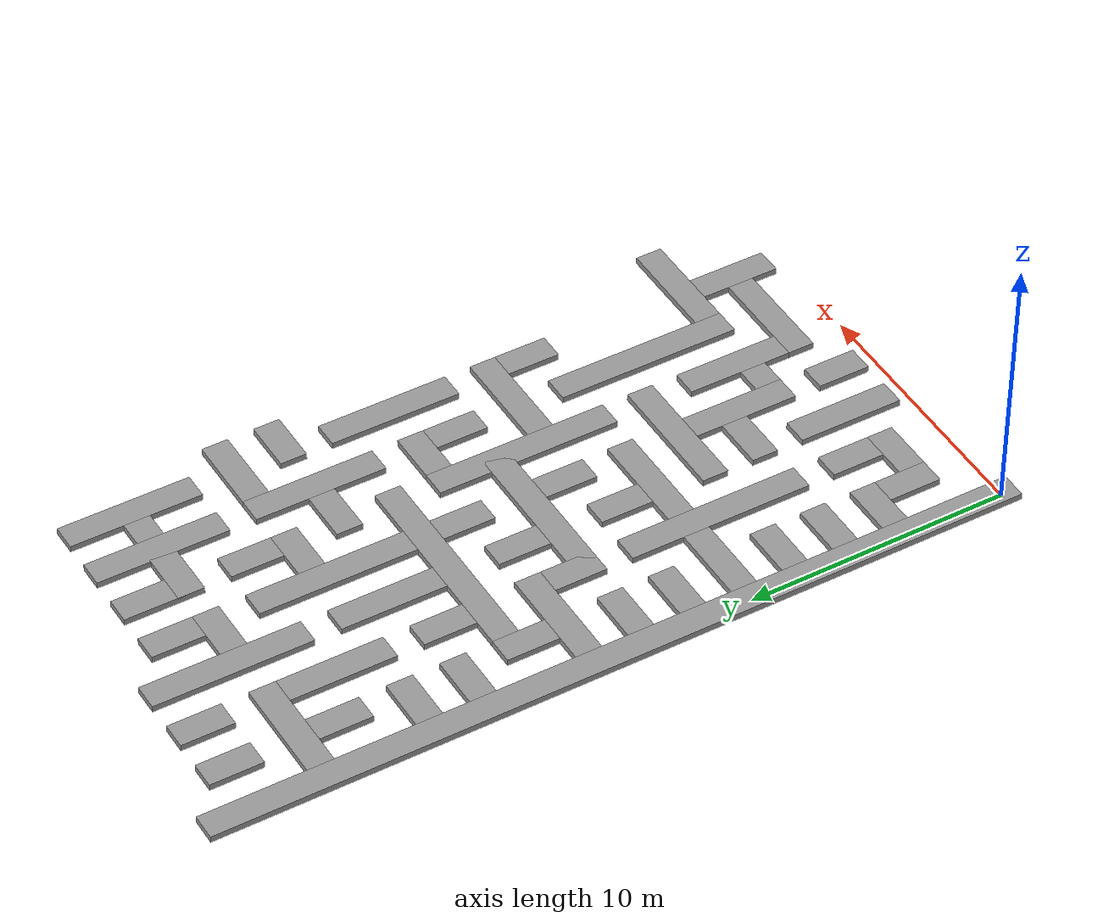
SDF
<sdf version="1.7">
 <model name="medium_maze">
  <pose>15 15 0 0 -0 0</pose>
  <link name="Wall_0">
   <collision name="Wall_0_Collision">
    <geometry><box><size>31 1 0.25</size></box></geometry>
    <pose>0 0 0.125 0 -0 0</pose>
   </collision>
   <visual name="Wall_0_Visual">
    <pose>0 0 0.125 0 -0 0</pose>
    <geometry><box><size>31 1 0.25</size></box></geometry>
    <material>
     <script><uri>file://media/materials/scripts/gazebo.material</uri><name>Gazebo/Grey</name></script>
     <ambient>1 1 1 1</ambient>
    </material>
    <meta><layer>0</layer></meta>
   </visual>
   <pose>-15 0 0 0 -0 1.5708</pose>
  </link>
  <link name="Wall_10">
   <collision name="Wall_10_Collision">
    <geometry><box><size>2 1 0.25</size></box></geometry>
    <pose>0 0 0.125 0 -0 0</pose>
   </collision>
   <visual name="Wall_10_Visual">
    <pose>0 0 0.125 0 -0 0</pose>
    <geometry><box><size>2 1 0.25</size></box></geometry>
    <material>
     <script><uri>file://media/materials/scripts/gazebo.material</uri><name>Gazebo/Grey</name></script>
     <ambient>1 1 1 1</ambient>
    </material>
    <meta><layer>0</layer></meta>
   </visual>
   <pose>-11 13.5 0 0 -0 -1.5708</pose>
  </link>
  <link name="Wall_102">
   <collision name="Wall_102_Collision">
    <geometry><box><size>4 1 0.25</size></box></geometry>
    <pose>0 0 0.125 0 -0 0</pose>
   </collision>
   <visual name="Wall_102_Visual">
    <pose>0 0 0.125 0 -0 0</pose>
    <geometry><box><size>4 1 0.25</size></box></geometry>
    <material>
     <script><uri>file://media/materials/scripts/gazebo.material</uri><name>Gazebo/Grey</name></script>
     <ambient>1 1 1 1</ambient>
    </material>
    <meta><layer>0</layer></meta>
   </visual>
   <pose>-3.5 -13 0 0 -0 0</pose>
  </link>
  <link name="Wall_104">
   <collision name="Wall_104_Collision">
    <geometry><box><size>4 1 0.25</size></box></geometry>
    <pose>0 0 0.125 0 -0 0</pose>
   </collision>
   <visual name="Wall_104_Visual">
    <pose>0 0 0.125 0 -0 0</pose>
    <geometry><box><size>4 1 0.25</size></box></geometry>
    <material>
     <script><uri>file://media/materials/scripts/gazebo.material</uri><name>Gazebo/Grey</name></script>
     <ambient>1 1 1 1</ambient>
    </material>
    <meta><layer>0</layer></meta>
   </visual>
   <pose>-5 -10.5 0 0 -0 -1.5708</pose>
  </link>
  <link name="Wall_106">
   <collision name="Wall_106_Collision">
    <geometry><box><size>2 1 0.25</size></box></geometry>
    <pose>0 0 0.125 0 -0 0</pose>
   </collision>
   <visual name="Wall_106_Visual">
    <pose>0 0 0.125 0 -0 0</pose>
    <geometry><box><size>2 1 0.25</size></box></geometry>
    <material>
     <script><uri>file://media/materials/scripts/gazebo.material</uri><name>Gazebo/Grey</name></script>
     <ambient>1 1 1 1</ambient>
    </material>
    <meta><layer>0</layer></meta>
   </visual>
   <pose>-8.5 -9 0 0 -0 0</pose>
  </link>
  <link name="Wall_108">
   <collision name="Wall_108_Collision">
    <geometry><box><size>7 1 0.25</size></box></geometry>
    <pose>0 0 0.125 0 -0 0</pose>
   </collision>
   <visual name="Wall_108_Visual">
    <pose>0 0 0.125 0 -0 0</pose>
    <geometry><box><size>7 1 0.25</size></box></geometry>
    <material>
     <script><uri>file://media/materials/scripts/gazebo.material</uri><name>Gazebo/Grey</name></script>
     <ambient>1 1 1 1</ambient>
    </material>
    <meta><layer>0</layer></meta>
   </visual>
   <pose>-3 -8 0 0 -0 1.5708</pose>
  </link>
  <link name="Wall_12">
   <collision name="Wall_12_Collision">
    <geometry><box><size>6 1 0.25</size></box></geometry>
    <pose>0 0 0.125 0 -0 0</pose>
   </collision>
   <visual name="Wall_12_Visual">
    <pose>0 0 0.125 0 -0 0</pose>
    <geometry><box><size>6 1 0.25</size></box></geometry>
    <material>
     <script><uri>file://media/materials/scripts/gazebo.material</uri><name>Gazebo/Grey</name></script>
     <ambient>1 1 1 1</ambient>
    </material>
    <meta><layer>0</layer></meta>
   </visual>
   <pose>-9 11.5 0 0 -0 -1.5708</pose>
  </link>
  <link name="Wall_14">
   <collision name="Wall_14_Collision">
    <geometry><box><size>2 1 0.25</size></box></geometry>
    <pose>0 0 0.125 0 -0 0</pose>
   </collision>
   <visual name="Wall_14_Visual">
    <pose>0 0 0.125 0 -0 0</pose>
    <geometry><box><size>2 1 0.25</size></box></geometry>
    <material>
     <script><uri>file://media/materials/scripts/gazebo.material</uri><name>Gazebo/Grey</name></script>
     <ambient>1 1 1 1</ambient>
    </material>
    <meta><layer>0</layer></meta>
   </visual>
   <pose>-7.5 11 0 0 -0 0</pose>
  </link>
  <link name="Wall_16">
   <collision name="Wall_16_Collision">
    <geometry><box><size>2 1 0.25</size></box></geometry>
    <pose>0 0 0.125 0 -0 0</pose>
   </collision>
   <visual name="Wall_16_Visual">
    <pose>0 0 0.125 0 -0 0</pose>
    <geometry><box><size>2 1 0.25</size></box></geometry>
    <material>
     <script><uri>file://media/materials/scripts/gazebo.material</uri><name>Gazebo/Grey</name></script>
     <ambient>1 1 1 1</ambient>
    </material>
    <meta><layer>0</layer></meta>
   </visual>
   <pose>-7 12.5 0 0 -0 1.5708</pose>
  </link>
  <link name="Wall_18">
   <collision name="Wall_18_Collision">
    <geometry><box><size>4 1 0.25</size></box></geometry>
    <pose>0 0 0.125 0 -0 0</pose>
   </collision>
   <visual name="Wall_18_Visual">
    <pose>0 0 0.125 0 -0 0</pose>
    <geometry><box><size>4 1 0.25</size></box></geometry>
    <material>
     <script><uri>file://media/materials/scripts/gazebo.material</uri><name>Gazebo/Grey</name></script>
     <ambient>1 1 1 1</ambient>
    </material>
    <meta><layer>0</layer></meta>
   </visual>
   <pose>-12.5 11 0 0 -0 0</pose>
  </link>
  <link name="Wall_198">
   <collision name="Wall_198_Collision">
    <geometry><box><size>5 1 0.25</size></box></geometry>
    <pose>0 0 0.125 0 -0 0</pose>
   </collision>
   <visual name="Wall_198_Visual">
    <pose>0 0 0.125 0 -0 0</pose>
    <geometry><box><size>5 1 0.25</size></box></geometry>
    <material>
     <script><uri>file://media/materials/scripts/gazebo.material</uri><name>Gazebo/Grey</name></script>
     <ambient>1 1 1 1</ambient>
    </material>
    <meta><layer>0</layer></meta>
   </visual>
   <pose>-1 11 0 0 -0 -1.5708</pose>
  </link>
  <link name="Wall_20">
   <collision name="Wall_20_Collision">
    <geometry><box><size>2 1 0.25</size></box></geometry>
    <pose>0 0 0.125 0 -0 0</pose>
   </collision>
   <visual name="Wall_20_Visual">
    <pose>0 0 0.125 0 -0 0</pose>
    <geometry><box><size>2 1 0.25</size></box></geometry>
    <material>
     <script><uri>file://media/materials/scripts/gazebo.material</uri><name>Gazebo/Grey</name></script>
     <ambient>1 1 1 1</ambient>
    </material>
    <meta><layer>0</layer></meta>
   </visual>
   <pose>-13 9.5 0 0 -0 -1.5708</pose>
  </link>
  <link name="Wall_22">
   <collision name="Wall_22_Collision">
    <geometry><box><size>4 1 0.25</size></box></geometry>
    <pose>0 0 0.125 0 -0 0</pose>
   </collision>
   <visual name="Wall_22_Visual">
    <pose>0 0 0.125 0 -0 0</pose>
    <geometry><box><size>4 1 0.25</size></box></geometry>
    <material>
     <script><uri>file://media/materials/scripts/gazebo.material</uri><name>Gazebo/Grey</name></script>
     <ambient>1 1 1 1</ambient>
    </material>
    <meta><layer>0</layer></meta>
   </visual>
   <pose>-11 8.5 0 0 -0 -1.5708</pose>
  </link>
  <link name="Wall_220">
   <collision name="Wall_220_Collision">
    <geometry><box><size>3 1 0.25</size></box></geometry>
    <pose>0 0 0.125 0 -0 0</pose>
   </collision>
   <visual name="Wall_220_Visual">
    <pose>0 0 0.125 0 -0 0</pose>
    <geometry><box><size>3 1 0.25</size></box></geometry>
    <material>
     <script><uri>file://media/materials/scripts/gazebo.material</uri><name>Gazebo/Grey</name></script>
     <ambient>1 1 1 1</ambient>
    </material>
    <meta><layer>0</layer></meta>
   </visual>
   <pose>-5 12 0 0 -0 -1.5708</pose>
  </link>
  <link name="Wall_224">
   <collision name="Wall_224_Collision">
    <geometry><box><size>5 1 0.25</size></box></geometry>
    <pose>0 0 0.125 0 -0 0</pose>
   </collision>
   <visual name="Wall_224_Visual">
    <pose>0 0 0.125 0 -0 0</pose>
    <geometry><box><size>5 1 0.25</size></box></geometry>
    <material>
     <script><uri>file://media/materials/scripts/gazebo.material</uri><name>Gazebo/Grey</name></script>
     <ambient>1 1 1 1</ambient>
    </material>
    <meta><layer>0</layer></meta>
   </visual>
   <pose>-3 11 0 0 -0 0</pose>
  </link>
  <link name="Wall_226">
   <collision name="Wall_226_Collision">
    <geometry><box><size>2 1 0.25</size></box></geometry>
    <pose>0 0 0.125 0 -0 0</pose>
   </collision>
   <visual name="Wall_226_Visual">
    <pose>0 0 0.125 0 -0 0</pose>
    <geometry><box><size>2 1 0.25</size></box></geometry>
    <material>
     <script><uri>file://media/materials/scripts/gazebo.material</uri><name>Gazebo/Grey</name></script>
     <ambient>1 1 1 1</ambient>
    </material>
    <meta><layer>0</layer></meta>
   </visual>
   <pose>-4.5 5 0 0 -0 0</pose>
  </link>
  <link name="Wall_228">
   <collision name="Wall_228_Collision">
    <geometry><box><size>5 1 0.25</size></box></geometry>
    <pose>0 0 0.125 0 -0 0</pose>
   </collision>
   <visual name="Wall_228_Visual">
    <pose>0 0 0.125 0 -0 0</pose>
    <geometry><box><size>5 1 0.25</size></box></geometry>
    <material>
     <script><uri>file://media/materials/scripts/gazebo.material</uri><name>Gazebo/Grey</name></script>
     <ambient>1 1 1 1</ambient>
    </material>
    <meta><layer>0</layer></meta>
   </visual>
   <pose>-3 11 0 0 -0 -1.5708</pose>
  </link>
  <link name="Wall_230">
   <collision name="Wall_230_Collision">
    <geometry><box><size>5 1 0.25</size></box></geometry>
    <pose>0 0 0.125 0 -0 0</pose>
   </collision>
   <visual name="Wall_230_Visual">
    <pose>0 0 0.125 0 -0 0</pose>
    <geometry><box><size>5 1 0.25</size></box></geometry>
    <material>
     <script><uri>file://media/materials/scripts/gazebo.material</uri><name>Gazebo/Grey</name></script>
     <ambient>1 1 1 1</ambient>
    </material>
    <meta><layer>0</layer></meta>
   </visual>
   <pose>-3 5 0 0 -0 1.5708</pose>
  </link>
  <link name="Wall_232">
   <collision name="Wall_232_Collision">
    <geometry><box><size>3 1 0.25</size></box></geometry>
    <pose>0 0 0.125 0 -0 0</pose>
   </collision>
   <visual name="Wall_232_Visual">
    <pose>0 0 0.125 0 -0 0</pose>
    <geometry><box><size>3 1 0.25</size></box></geometry>
    <material>
     <script><uri>file://media/materials/scripts/gazebo.material</uri><name>Gazebo/Grey</name></script>
     <ambient>1 1 1 1</ambient>
    </material>
    <meta><layer>0</layer></meta>
   </visual>
   <pose>-1 7 0 0 -0 0</pose>
  </link>
  <link name="Wall_234">
   <collision name="Wall_234_Collision">
    <geometry><box><size>2 1 0.25</size></box></geometry>
    <pose>0 0 0.125 0 -0 0</pose>
   </collision>
   <visual name="Wall_234_Visual">
    <pose>0 0 0.125 0 -0 0</pose>
    <geometry><box><size>2 1 0.25</size></box></geometry>
    <material>
     <script><uri>file://media/materials/scripts/gazebo.material</uri><name>Gazebo/Grey</name></script>
     <ambient>1 1 1 1</ambient>
    </material>
    <meta><layer>0</layer></meta>
   </visual>
   <pose>-0.5 5 0 0 -0 3.14159</pose>
  </link>
  <link name="Wall_236">
   <collision name="Wall_236_Collision">
    <geometry><box><size>5 1 0.25</size></box></geometry>
    <pose>0 0 0.125 0 -0 0</pose>
   </collision>
   <visual name="Wall_236_Visual">
    <pose>0 0 0.125 0 -0 0</pose>
    <geometry><box><size>5 1 0.25</size></box></geometry>
    <material>
     <script><uri>file://media/materials/scripts/gazebo.material</uri><name>Gazebo/Grey</name></script>
     <ambient>1 1 1 1</ambient>
    </material>
    <meta><layer>0</layer></meta>
   </visual>
   <pose>-1 1 0 0 -0 -1.5708</pose>
  </link>
  <link name="Wall_24">
   <collision name="Wall_24_Collision">
    <geometry><box><size>2 1 0.25</size></box></geometry>
    <pose>0 0 0.125 0 -0 0</pose>
   </collision>
   <visual name="Wall_24_Visual">
    <pose>0 0 0.125 0 -0 0</pose>
    <geometry><box><size>2 1 0.25</size></box></geometry>
    <material>
     <script><uri>file://media/materials/scripts/gazebo.material</uri><name>Gazebo/Grey</name></script>
     <ambient>1 1 1 1</ambient>
    </material>
    <meta><layer>0</layer></meta>
   </visual>
   <pose>-13.5 7 0 0 -0 0</pose>
  </link>
  <link name="Wall_26">
   <collision name="Wall_26_Collision">
    <geometry><box><size>2 1 0.25</size></box></geometry>
    <pose>0 0 0.125 0 -0 0</pose>
   </collision>
   <visual name="Wall_26_Visual">
    <pose>0 0 0.125 0 -0 0</pose>
    <geometry><box><size>2 1 0.25</size></box></geometry>
    <material>
     <script><uri>file://media/materials/scripts/gazebo.material</uri><name>Gazebo/Grey</name></script>
     <ambient>1 1 1 1</ambient>
    </material>
    <meta><layer>0</layer></meta>
   </visual>
   <pose>-13.5 5 0 0 -0 0</pose>
  </link>
  <link name="Wall_28">
   <collision name="Wall_28_Collision">
    <geometry><box><size>4 1 0.25</size></box></geometry>
    <pose>0 0 0.125 0 -0 0</pose>
   </collision>
   <visual name="Wall_28_Visual">
    <pose>0 0 0.125 0 -0 0</pose>
    <geometry><box><size>4 1 0.25</size></box></geometry>
    <material>
     <script><uri>file://media/materials/scripts/gazebo.material</uri><name>Gazebo/Grey</name></script>
     <ambient>1 1 1 1</ambient>
    </material>
    <meta><layer>0</layer></meta>
   </visual>
   <pose>-12.5 1 0 0 -0 0</pose>
  </link>
  <link name="Wall_30">
   <collision name="Wall_30_Collision">
    <geometry><box><size>2 1 0.25</size></box></geometry>
    <pose>0 0 0.125 0 -0 0</pose>
   </collision>
   <visual name="Wall_30_Visual">
    <pose>0 0 0.125 0 -0 0</pose>
    <geometry><box><size>2 1 0.25</size></box></geometry>
    <material>
     <script><uri>file://media/materials/scripts/gazebo.material</uri><name>Gazebo/Grey</name></script>
     <ambient>1 1 1 1</ambient>
    </material>
    <meta><layer>0</layer></meta>
   </visual>
   <pose>-11 4.5 0 0 -0 1.5708</pose>
  </link>
  <link name="Wall_32">
   <collision name="Wall_32_Collision">
    <geometry><box><size>2 1 0.25</size></box></geometry>
    <pose>0 0 0.125 0 -0 0</pose>
   </collision>
   <visual name="Wall_32_Visual">
    <pose>0 0 0.125 0 -0 0</pose>
    <geometry><box><size>2 1 0.25</size></box></geometry>
    <material>
     <script><uri>file://media/materials/scripts/gazebo.material</uri><name>Gazebo/Grey</name></script>
     <ambient>1 1 1 1</ambient>
    </material>
    <meta><layer>0</layer></meta>
   </visual>
   <pose>-13 2.5 0 0 -0 1.5708</pose>
  </link>
  <link name="Wall_34">
   <collision name="Wall_34_Collision">
    <geometry><box><size>4 1 0.25</size></box></geometry>
    <pose>0 0 0.125 0 -0 0</pose>
   </collision>
   <visual name="Wall_34_Visual">
    <pose>0 0 0.125 0 -0 0</pose>
    <geometry><box><size>4 1 0.25</size></box></geometry>
    <material>
     <script><uri>file://media/materials/scripts/gazebo.material</uri><name>Gazebo/Grey</name></script>
     <ambient>1 1 1 1</ambient>
    </material>
    <meta><layer>0</layer></meta>
   </visual>
   <pose>-9 5.5 0 0 -0 1.5708</pose>
  </link>
  <link name="Wall_36">
   <collision name="Wall_36_Collision">
    <geometry><box><size>8 1 0.25</size></box></geometry>
    <pose>0 0 0.125 0 -0 0</pose>
   </collision>
   <visual name="Wall_36_Visual">
    <pose>0 0 0.125 0 -0 0</pose>
    <geometry><box><size>8 1 0.25</size></box></geometry>
    <material>
     <script><uri>file://media/materials/scripts/gazebo.material</uri><name>Gazebo/Grey</name></script>
     <ambient>1 1 1 1</ambient>
    </material>
    <meta><layer>0</layer></meta>
   </visual>
   <pose>-8.5 3 0 0 -0 0</pose>
  </link>
  <link name="Wall_38">
   <collision name="Wall_38_Collision">
    <geometry><box><size>6 1 0.25</size></box></geometry>
    <pose>0 0 0.125 0 -0 0</pose>
   </collision>
   <visual name="Wall_38_Visual">
    <pose>0 0 0.125 0 -0 0</pose>
    <geometry><box><size>6 1 0.25</size></box></geometry>
    <material>
     <script><uri>file://media/materials/scripts/gazebo.material</uri><name>Gazebo/Grey</name></script>
     <ambient>1 1 1 1</ambient>
    </material>
    <meta><layer>0</layer></meta>
   </visual>
   <pose>-7 6.5 0 0 -0 1.5708</pose>
  </link>
  <link name="Wall_40">
   <collision name="Wall_40_Collision">
    <geometry><box><size>2 1 0.25</size></box></geometry>
    <pose>0 0 0.125 0 -0 0</pose>
   </collision>
   <visual name="Wall_40_Visual">
    <pose>0 0 0.125 0 -0 0</pose>
    <geometry><box><size>2 1 0.25</size></box></geometry>
    <material>
     <script><uri>file://media/materials/scripts/gazebo.material</uri><name>Gazebo/Grey</name></script>
     <ambient>1 1 1 1</ambient>
    </material>
    <meta><layer>0</layer></meta>
   </visual>
   <pose>-11 -0.5 0 0 -0 -1.5708</pose>
  </link>
  <link name="Wall_42">
   <collision name="Wall_42_Collision">
    <geometry><box><size>2 1 0.25</size></box></geometry>
    <pose>0 0 0.125 0 -0 0</pose>
   </collision>
   <visual name="Wall_42_Visual">
    <pose>0 0 0.125 0 -0 0</pose>
    <geometry><box><size>2 1 0.25</size></box></geometry>
    <material>
     <script><uri>file://media/materials/scripts/gazebo.material</uri><name>Gazebo/Grey</name></script>
     <ambient>1 1 1 1</ambient>
    </material>
    <meta><layer>0</layer></meta>
   </visual>
   <pose>-9 0.5 0 0 -0 -1.5708</pose>
  </link>
  <link name="Wall_44">
   <collision name="Wall_44_Collision">
    <geometry><box><size>2 1 0.25</size></box></geometry>
    <pose>0 0 0.125 0 -0 0</pose>
   </collision>
   <visual name="Wall_44_Visual">
    <pose>0 0 0.125 0 -0 0</pose>
    <geometry><box><size>2 1 0.25</size></box></geometry>
    <material>
     <script><uri>file://media/materials/scripts/gazebo.material</uri><name>Gazebo/Grey</name></script>
     <ambient>1 1 1 1</ambient>
    </material>
    <meta><layer>0</layer></meta>
   </visual>
   <pose>-7 1.5 0 0 -0 -1.5708</pose>
  </link>
  <link name="Wall_46">
   <collision name="Wall_46_Collision">
    <geometry><box><size>2 1 0.25</size></box></geometry>
    <pose>0 0 0.125 0 -0 0</pose>
   </collision>
   <visual name="Wall_46_Visual">
    <pose>0 0 0.125 0 -0 0</pose>
    <geometry><box><size>2 1 0.25</size></box></geometry>
    <material>
     <script><uri>file://media/materials/scripts/gazebo.material</uri><name>Gazebo/Grey</name></script>
     <ambient>1 1 1 1</ambient>
    </material>
    <meta><layer>0</layer></meta>
   </visual>
   <pose>-5 8.5 0 0 -0 1.5708</pose>
  </link>
  <link name="Wall_48">
   <collision name="Wall_48_Collision">
    <geometry><box><size>2 1 0.25</size></box></geometry>
    <pose>0 0 0.125 0 -0 0</pose>
   </collision>
   <visual name="Wall_48_Visual">
    <pose>0 0 0.125 0 -0 0</pose>
    <geometry><box><size>2 1 0.25</size></box></geometry>
    <material>
     <script><uri>file://media/materials/scripts/gazebo.material</uri><name>Gazebo/Grey</name></script>
     <ambient>1 1 1 1</ambient>
    </material>
    <meta><layer>0</layer></meta>
   </visual>
   <pose>-5.5 7 0 0 -0 0</pose>
  </link>
  <link name="Wall_50">
   <collision name="Wall_50_Collision">
    <geometry><box><size>7 1 0.25</size></box></geometry>
    <pose>0 0 0.125 0 -0 0</pose>
   </collision>
   <visual name="Wall_50_Visual">
    <pose>0 0 0.125 0 -0 0</pose>
    <geometry><box><size>7 1 0.25</size></box></geometry>
    <material>
     <script><uri>file://media/materials/scripts/gazebo.material</uri><name>Gazebo/Grey</name></script>
     <ambient>1 1 1 1</ambient>
    </material>
    <meta><layer>0</layer></meta>
   </visual>
   <pose>-8 -1 0 0 -0 0</pose>
  </link>
  <link name="Wall_52">
   <collision name="Wall_52_Collision">
    <geometry><box><size>2 1 0.25</size></box></geometry>
    <pose>0 0 0.125 0 -0 0</pose>
   </collision>
   <visual name="Wall_52_Visual">
    <pose>0 0 0.125 0 -0 0</pose>
    <geometry><box><size>2 1 0.25</size></box></geometry>
    <material>
     <script><uri>file://media/materials/scripts/gazebo.material</uri><name>Gazebo/Grey</name></script>
     <ambient>1 1 1 1</ambient>
    </material>
    <meta><layer>0</layer></meta>
   </visual>
   <pose>-13.5 -3 0 0 -0 0</pose>
  </link>
  <link name="Wall_54">
   <collision name="Wall_54_Collision">
    <geometry><box><size>2 1 0.25</size></box></geometry>
    <pose>0 0 0.125 0 -0 0</pose>
   </collision>
   <visual name="Wall_54_Visual">
    <pose>0 0 0.125 0 -0 0</pose>
    <geometry><box><size>2 1 0.25</size></box></geometry>
    <material>
     <script><uri>file://media/materials/scripts/gazebo.material</uri><name>Gazebo/Grey</name></script>
     <ambient>1 1 1 1</ambient>
    </material>
    <meta><layer>0</layer></meta>
   </visual>
   <pose>-7 -2.5 0 0 -0 -1.5708</pose>
  </link>
  <link name="Wall_56">
   <collision name="Wall_56_Collision">
    <geometry><box><size>2 1 0.25</size></box></geometry>
    <pose>0 0 0.125 0 -0 0</pose>
   </collision>
   <visual name="Wall_56_Visual">
    <pose>0 0 0.125 0 -0 0</pose>
    <geometry><box><size>2 1 0.25</size></box></geometry>
    <material>
     <script><uri>file://media/materials/scripts/gazebo.material</uri><name>Gazebo/Grey</name></script>
     <ambient>1 1 1 1</ambient>
    </material>
    <meta><layer>0</layer></meta>
   </visual>
   <pose>-3 -0.5 0 0 -0 -1.5708</pose>
  </link>
  <link name="Wall_58">
   <collision name="Wall_58_Collision">
    <geometry><box><size>2 1 0.25</size></box></geometry>
    <pose>0 0 0.125 0 -0 0</pose>
   </collision>
   <visual name="Wall_58_Visual">
    <pose>0 0 0.125 0 -0 0</pose>
    <geometry><box><size>2 1 0.25</size></box></geometry>
    <material>
     <script><uri>file://media/materials/scripts/gazebo.material</uri><name>Gazebo/Grey</name></script>
     <ambient>1 1 1 1</ambient>
    </material>
    <meta><layer>0</layer></meta>
   </visual>
   <pose>-1 -4.5 0 0 -0 -1.5708</pose>
  </link>
  <link name="Wall_60">
   <collision name="Wall_60_Collision">
    <geometry><box><size>2 1 0.25</size></box></geometry>
    <pose>0 0 0.125 0 -0 0</pose>
   </collision>
   <visual name="Wall_60_Visual">
    <pose>0 0 0.125 0 -0 0</pose>
    <geometry><box><size>2 1 0.25</size></box></geometry>
    <material>
     <script><uri>file://media/materials/scripts/gazebo.material</uri><name>Gazebo/Grey</name></script>
     <ambient>1 1 1 1</ambient>
    </material>
    <meta><layer>0</layer></meta>
   </visual>
   <pose>-13.5 -1 0 0 -0 0</pose>
  </link>
  <link name="Wall_62">
   <collision name="Wall_62_Collision">
    <geometry><box><size>2 1 0.25</size></box></geometry>
    <pose>0 0 0.125 0 -0 0</pose>
   </collision>
   <visual name="Wall_62_Visual">
    <pose>0 0 0.125 0 -0 0</pose>
    <geometry><box><size>2 1 0.25</size></box></geometry>
    <material>
     <script><uri>file://media/materials/scripts/gazebo.material</uri><name>Gazebo/Grey</name></script>
     <ambient>1 1 1 1</ambient>
    </material>
    <meta><layer>0</layer></meta>
   </visual>
   <pose>-3.5 1 0 0 -0 0</pose>
  </link>
  <link name="Wall_64">
   <collision name="Wall_64_Collision">
    <geometry><box><size>4 1 0.25</size></box></geometry>
    <pose>0 0 0.125 0 -0 0</pose>
   </collision>
   <visual name="Wall_64_Visual">
    <pose>0 0 0.125 0 -0 0</pose>
    <geometry><box><size>4 1 0.25</size></box></geometry>
    <material>
     <script><uri>file://media/materials/scripts/gazebo.material</uri><name>Gazebo/Grey</name></script>
     <ambient>1 1 1 1</ambient>
    </material>
    <meta><layer>0</layer></meta>
   </visual>
   <pose>-2.5 -3 0 0 -0 0</pose>
  </link>
  <link name="Wall_66">
   <collision name="Wall_66_Collision">
    <geometry><box><size>7 1 0.25</size></box></geometry>
    <pose>0 0 0.125 0 -0 0</pose>
   </collision>
   <visual name="Wall_66_Visual">
    <pose>0 0 0.125 0 -0 0</pose>
    <geometry><box><size>7 1 0.25</size></box></geometry>
    <material>
     <script><uri>file://media/materials/scripts/gazebo.material</uri><name>Gazebo/Grey</name></script>
     <ambient>1 1 1 1</ambient>
    </material>
    <meta><layer>0</layer></meta>
   </visual>
   <pose>-5 -2 0 0 -0 -1.5708</pose>
  </link>
  <link name="Wall_68">
   <collision name="Wall_68_Collision">
    <geometry><box><size>7 1 0.25</size></box></geometry>
    <pose>0 0 0.125 0 -0 0</pose>
   </collision>
   <visual name="Wall_68_Visual">
    <pose>0 0 0.125 0 -0 0</pose>
    <geometry><box><size>7 1 0.25</size></box></geometry>
    <material>
     <script><uri>file://media/materials/scripts/gazebo.material</uri><name>Gazebo/Grey</name></script>
     <ambient>1 1 1 1</ambient>
    </material>
    <meta><layer>0</layer></meta>
   </visual>
   <pose>-11 -6 0 0 -0 1.5708</pose>
  </link>
  <link name="Wall_70">
   <collision name="Wall_70_Collision">
    <geometry><box><size>2 1 0.25</size></box></geometry>
    <pose>0 0 0.125 0 -0 0</pose>
   </collision>
   <visual name="Wall_70_Visual">
    <pose>0 0 0.125 0 -0 0</pose>
    <geometry><box><size>2 1 0.25</size></box></geometry>
    <material>
     <script><uri>file://media/materials/scripts/gazebo.material</uri><name>Gazebo/Grey</name></script>
     <ambient>1 1 1 1</ambient>
    </material>
    <meta><layer>0</layer></meta>
   </visual>
   <pose>-13.5 -7 0 0 -0 0</pose>
  </link>
  <link name="Wall_72">
   <collision name="Wall_72_Collision">
    <geometry><box><size>2 1 0.25</size></box></geometry>
    <pose>0 0 0.125 0 -0 0</pose>
   </collision>
   <visual name="Wall_72_Visual">
    <pose>0 0 0.125 0 -0 0</pose>
    <geometry><box><size>2 1 0.25</size></box></geometry>
    <material>
     <script><uri>file://media/materials/scripts/gazebo.material</uri><name>Gazebo/Grey</name></script>
     <ambient>1 1 1 1</ambient>
    </material>
    <meta><layer>0</layer></meta>
   </visual>
   <pose>-13 -12.5 0 0 -0 -1.5708</pose>
  </link>
  <link name="Wall_74">
   <collision name="Wall_74_Collision">
    <geometry><box><size>2 1 0.25</size></box></geometry>
    <pose>0 0 0.125 0 -0 0</pose>
   </collision>
   <visual name="Wall_74_Visual">
    <pose>0 0 0.125 0 -0 0</pose>
    <geometry><box><size>2 1 0.25</size></box></geometry>
    <material>
     <script><uri>file://media/materials/scripts/gazebo.material</uri><name>Gazebo/Grey</name></script>
     <ambient>1 1 1 1</ambient>
    </material>
    <meta><layer>0</layer></meta>
   </visual>
   <pose>-13.5 -9 0 0 -0 0</pose>
  </link>
  <link name="Wall_76">
   <collision name="Wall_76_Collision">
    <geometry><box><size>2 1 0.25</size></box></geometry>
    <pose>0 0 0.125 0 -0 0</pose>
   </collision>
   <visual name="Wall_76_Visual">
    <pose>0 0 0.125 0 -0 0</pose>
    <geometry><box><size>2 1 0.25</size></box></geometry>
    <material>
     <script><uri>file://media/materials/scripts/gazebo.material</uri><name>Gazebo/Grey</name></script>
     <ambient>1 1 1 1</ambient>
    </material>
    <meta><layer>0</layer></meta>
   </visual>
   <pose>-13.5 -11 0 0 -0 0</pose>
  </link>
  <link name="Wall_78">
   <collision name="Wall_78_Collision">
    <geometry><box><size>2 1 0.25</size></box></geometry>
    <pose>0 0 0.125 0 -0 0</pose>
   </collision>
   <visual name="Wall_78_Visual">
    <pose>0 0 0.125 0 -0 0</pose>
    <geometry><box><size>2 1 0.25</size></box></geometry>
    <material>
     <script><uri>file://media/materials/scripts/gazebo.material</uri><name>Gazebo/Grey</name></script>
     <ambient>1 1 1 1</ambient>
    </material>
    <meta><layer>0</layer></meta>
   </visual>
   <pose>-11.5 -13 0 0 -0 0</pose>
  </link>
  <link name="Wall_8">
   <collision name="Wall_8_Collision">
    <geometry><box><size>2 1 0.25</size></box></geometry>
    <pose>0 0 0.125 0 -0 0</pose>
   </collision>
   <visual name="Wall_8_Visual">
    <pose>0 0 0.125 0 -0 0</pose>
    <geometry><box><size>2 1 0.25</size></box></geometry>
    <material>
     <script><uri>file://media/materials/scripts/gazebo.material</uri><name>Gazebo/Grey</name></script>
     <ambient>1 1 1 1</ambient>
    </material>
    <meta><layer>0</layer></meta>
   </visual>
   <pose>-13 13.5 0 0 -0 -1.5708</pose>
  </link>
  <link name="Wall_80">
   <collision name="Wall_80_Collision">
    <geometry><box><size>8 1 0.25</size></box></geometry>
    <pose>0 0 0.125 0 -0 0</pose>
   </collision>
   <visual name="Wall_80_Visual">
    <pose>0 0 0.125 0 -0 0</pose>
    <geometry><box><size>8 1 0.25</size></box></geometry>
    <material>
     <script><uri>file://media/materials/scripts/gazebo.material</uri><name>Gazebo/Grey</name></script>
     <ambient>1 1 1 1</ambient>
    </material>
    <meta><layer>0</layer></meta>
   </visual>
   <pose>-10.5 -5 0 0 -0 0</pose>
  </link>
  <link name="Wall_82">
   <collision name="Wall_82_Collision">
    <geometry><box><size>2 1 0.25</size></box></geometry>
    <pose>0 0 0.125 0 -0 0</pose>
   </collision>
   <visual name="Wall_82_Visual">
    <pose>0 0 0.125 0 -0 0</pose>
    <geometry><box><size>2 1 0.25</size></box></geometry>
    <material>
     <script><uri>file://media/materials/scripts/gazebo.material</uri><name>Gazebo/Grey</name></script>
     <ambient>1 1 1 1</ambient>
    </material>
    <meta><layer>0</layer></meta>
   </visual>
   <pose>-9 -3.5 0 0 -0 1.5708</pose>
  </link>
  <link name="Wall_84">
   <collision name="Wall_84_Collision">
    <geometry><box><size>2 1 0.25</size></box></geometry>
    <pose>0 0 0.125 0 -0 0</pose>
   </collision>
   <visual name="Wall_84_Visual">
    <pose>0 0 0.125 0 -0 0</pose>
    <geometry><box><size>2 1 0.25</size></box></geometry>
    <material>
     <script><uri>file://media/materials/scripts/gazebo.material</uri><name>Gazebo/Grey</name></script>
     <ambient>1 1 1 1</ambient>
    </material>
    <meta><layer>0</layer></meta>
   </visual>
   <pose>-11 -11.5 0 0 -0 1.5708</pose>
  </link>
  <link name="Wall_86">
   <collision name="Wall_86_Collision">
    <geometry><box><size>4 1 0.25</size></box></geometry>
    <pose>0 0 0.125 0 -0 0</pose>
   </collision>
   <visual name="Wall_86_Visual">
    <pose>0 0 0.125 0 -0 0</pose>
    <geometry><box><size>4 1 0.25</size></box></geometry>
    <material>
     <script><uri>file://media/materials/scripts/gazebo.material</uri><name>Gazebo/Grey</name></script>
     <ambient>1 1 1 1</ambient>
    </material>
    <meta><layer>0</layer></meta>
   </visual>
   <pose>-9 -12.5 0 0 -0 1.5708</pose>
  </link>
  <link name="Wall_88">
   <collision name="Wall_88_Collision">
    <geometry><box><size>2 1 0.25</size></box></geometry>
    <pose>0 0 0.125 0 -0 0</pose>
   </collision>
   <visual name="Wall_88_Visual">
    <pose>0 0 0.125 0 -0 0</pose>
    <geometry><box><size>2 1 0.25</size></box></geometry>
    <material>
     <script><uri>file://media/materials/scripts/gazebo.material</uri><name>Gazebo/Grey</name></script>
     <ambient>1 1 1 1</ambient>
    </material>
    <meta><layer>0</layer></meta>
   </visual>
   <pose>-7 -13.5 0 0 -0 1.5708</pose>
  </link>
  <link name="Wall_90">
   <collision name="Wall_90_Collision">
    <geometry><box><size>5 1 0.25</size></box></geometry>
    <pose>0 0 0.125 0 -0 0</pose>
   </collision>
   <visual name="Wall_90_Visual">
    <pose>0 0 0.125 0 -0 0</pose>
    <geometry><box><size>5 1 0.25</size></box></geometry>
    <material>
     <script><uri>file://media/materials/scripts/gazebo.material</uri><name>Gazebo/Grey</name></script>
     <ambient>1 1 1 1</ambient>
    </material>
    <meta><layer>0</layer></meta>
   </visual>
   <pose>-7 -7 0 0 -0 0</pose>
  </link>
  <link name="Wall_92">
   <collision name="Wall_92_Collision">
    <geometry><box><size>4 1 0.25</size></box></geometry>
    <pose>0 0 0.125 0 -0 0</pose>
   </collision>
   <visual name="Wall_92_Visual">
    <pose>0 0 0.125 0 -0 0</pose>
    <geometry><box><size>4 1 0.25</size></box></geometry>
    <material>
     <script><uri>file://media/materials/scripts/gazebo.material</uri><name>Gazebo/Grey</name></script>
     <ambient>1 1 1 1</ambient>
    </material>
    <meta><layer>0</layer></meta>
   </visual>
   <pose>-7 -9.5 0 0 -0 -1.5708</pose>
  </link>
  <link name="Wall_94">
   <collision name="Wall_94_Collision">
    <geometry><box><size>1 1 0.25</size></box></geometry>
    <pose>0 0 0.125 0 -0 0</pose>
   </collision>
   <visual name="Wall_94_Visual">
    <pose>0 0 0.125 0 -0 0</pose>
    <geometry><box><size>1 1 0.25</size></box></geometry>
    <material>
     <script><uri>file://media/materials/scripts/gazebo.material</uri><name>Gazebo/Grey</name></script>
     <ambient>1 1 1 1</ambient>
    </material>
    <meta><layer>0</layer></meta>
   </visual>
   <pose>-6 -11 0 0 -0 0</pose>
  </link>
  <link name="Wall_96">
   <collision name="Wall_96_Collision">
    <geometry><box><size>3 1 0.25</size></box></geometry>
    <pose>0 0 0.125 0 -0 0</pose>
   </collision>
   <visual name="Wall_96_Visual">
    <pose>0 0 0.125 0 -0 0</pose>
    <geometry><box><size>3 1 0.25</size></box></geometry>
    <material>
     <script><uri>file://media/materials/scripts/gazebo.material</uri><name>Gazebo/Grey</name></script>
     <ambient>1 1 1 1</ambient>
    </material>
    <meta><layer>0</layer></meta>
   </visual>
   <pose>-1 -13 0 0 -0 1.5708</pose>
  </link>
  <link name="Wall_98">
   <collision name="Wall_98_Collision">
    <geometry><box><size>4 1 0.25</size></box></geometry>
    <pose>0 0 0.125 0 -0 0</pose>
   </collision>
   <visual name="Wall_98_Visual">
    <pose>0 0 0.125 0 -0 0</pose>
    <geometry><box><size>4 1 0.25</size></box></geometry>
    <material>
     <script><uri>file://media/materials/scripts/gazebo.material</uri><name>Gazebo/Grey</name></script>
     <ambient>1 1 1 1</ambient>
    </material>
    <meta><layer>0</layer></meta>
   </visual>
   <pose>-0.5 -11 0 0 -0 3.14159</pose>
  </link>
  <static>1</static>
 </model>
</sdf>
